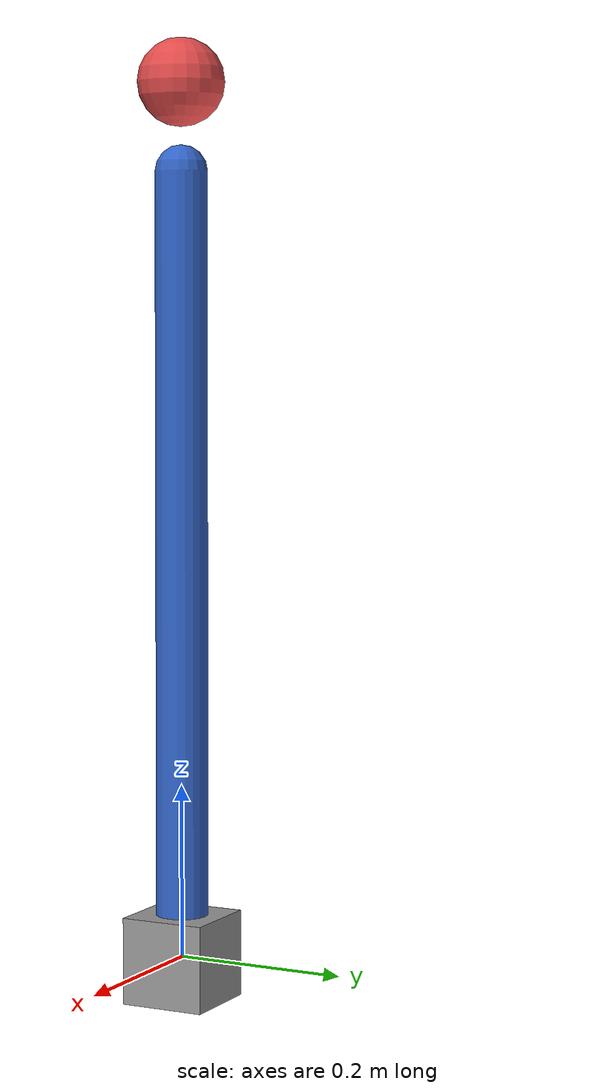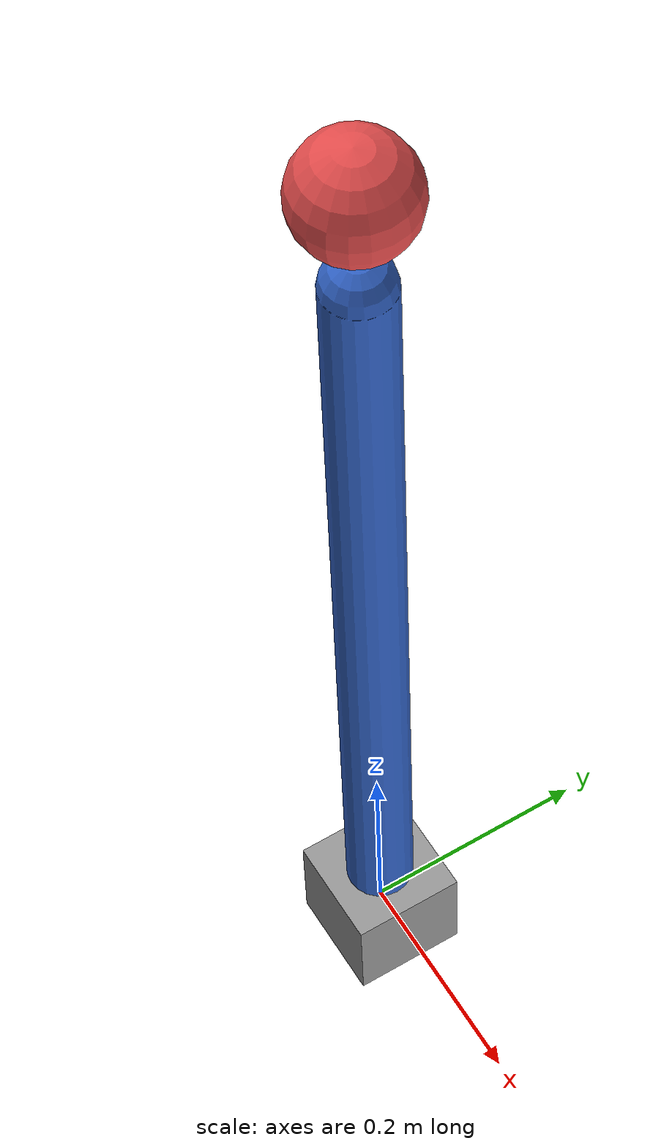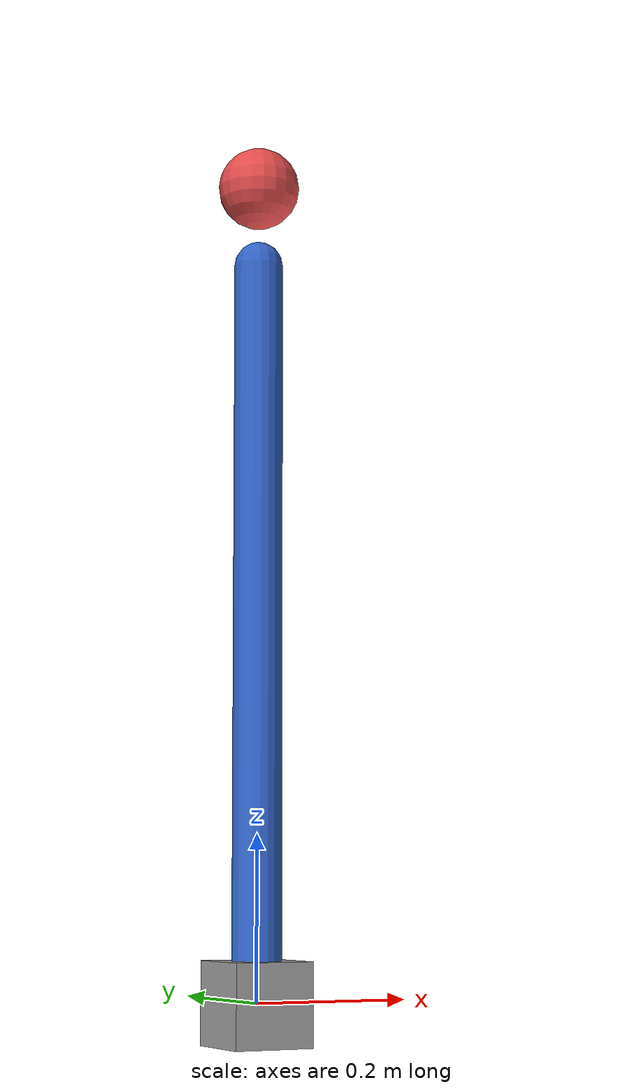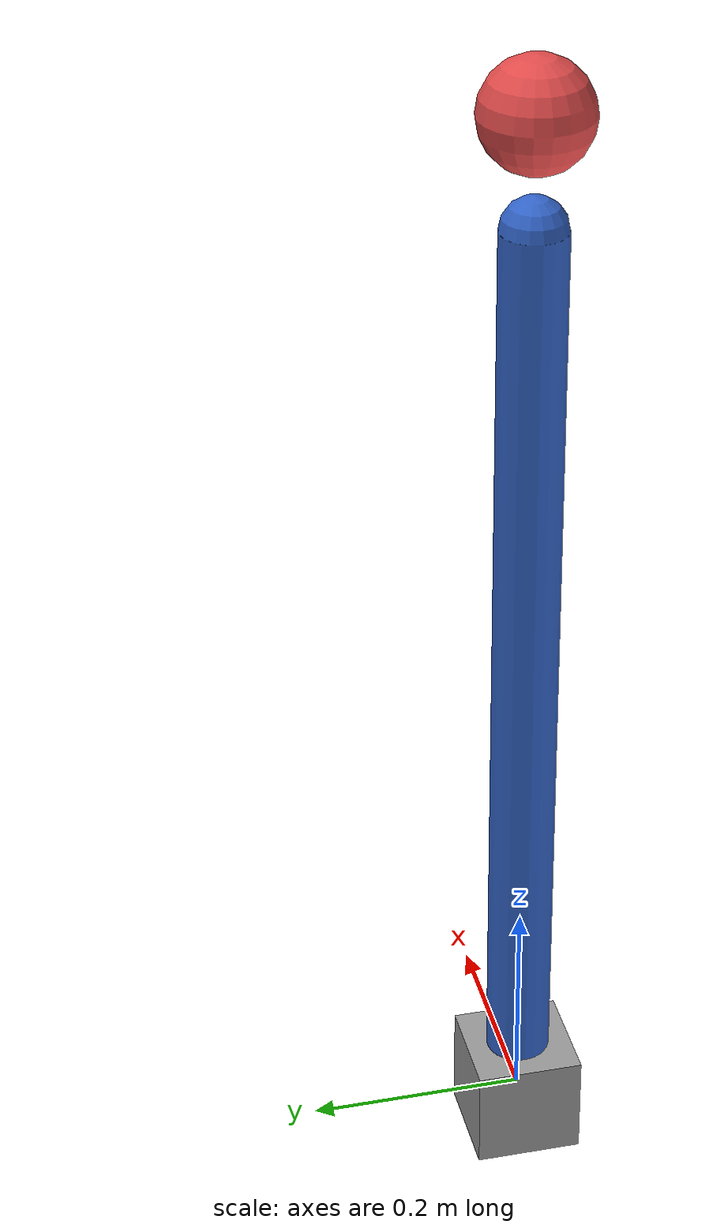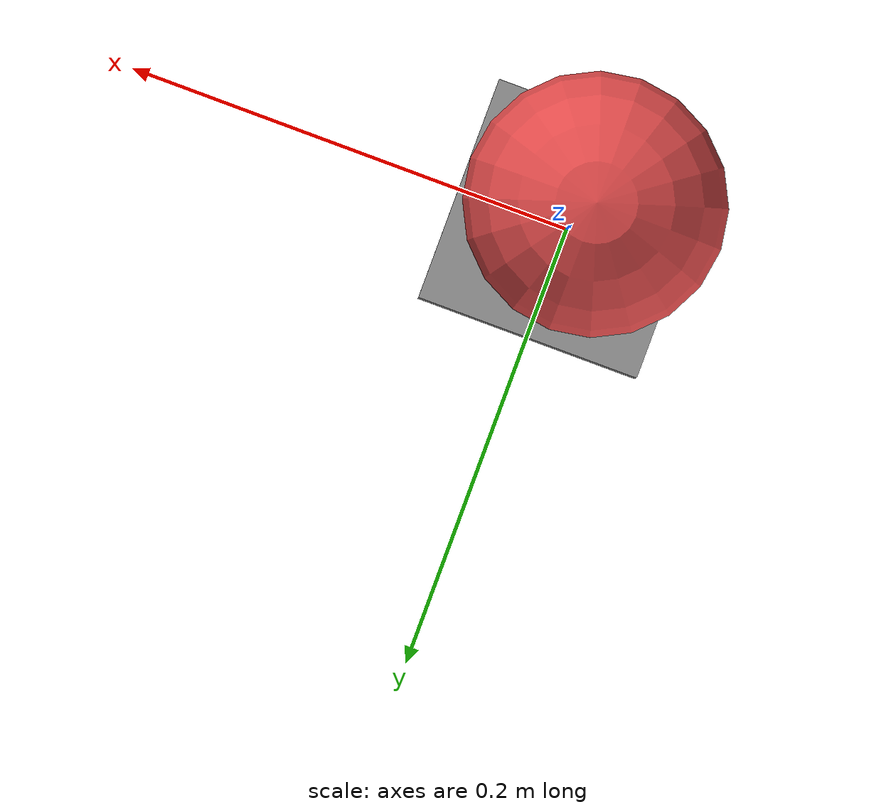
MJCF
<mujoco model="pendulum">
    <compiler angle="radian" autolimits="true"/>
    <option timestep="0.001" gravity="0 0 -9.81" integrator="implicitfast"/>

    <default>
        <joint damping="0.05"/>
      <general dyntype="none" gaintype="fixed" biastype="none" dynprm="1 0 0" gainprm="1 0 0" biasprm="0 0 0"/>
    </default>

    <worldbody>
        <body name="base_link" pos="0 0 0">
            <geom type="box" size="0.05 0.05 0.05" rgba="0.6 0.6 0.6 1"/>

            <body name="pendulum_link" pos="0 0 0">
                <joint name="pendulum_joint" type="hinge" axis="0 1 0" range="-12.5664 12.5664"/>
                <geom type="capsule" fromto="0 0 0 0 0 0.9" size="0.03" rgba="0.2 0.4 0.8 1"/>

                <body name="pendulum_ft_link" pos="0 0 0.9">
                    <inertial pos="0 0 0" mass="0.001" diaginertia="1e-6 1e-6 1e-6"/>
                    <site name="pendulum_ft_site" pos="0 0 0" size="0.02" rgba="1 0 0 1"/>

                    <body name="pendulum_tip_link" pos="0 0 0.1">
                        <inertial pos="0 0 0" mass="0.2" diaginertia="0.001 0.001 0.001"/>
                        <geom type="sphere" size="0.05" rgba="0.9 0.3 0.3 1"/>
                        <site name="pendulum_tip" pos="0 0 0" size="0.02" rgba="1 0.8 0 1"/>
                    </body>
                </body>
            </body>
        </body>
    </worldbody>

    <actuator>
        <general name="pendulum_joint_actuator" joint="pendulum_joint" ctrlrange="-40.0 40.0" ctrllimited="true"/>
    </actuator>

    <sensor>
        <force name="pendulum_tip_force" site="pendulum_ft_site"/>
        <torque name="pendulum_tip_torque" site="pendulum_ft_site"/>
    </sensor>

    <keyframe>
        <key name="home" qpos="0.1" ctrl="0"/>
    </keyframe>
</mujoco>
